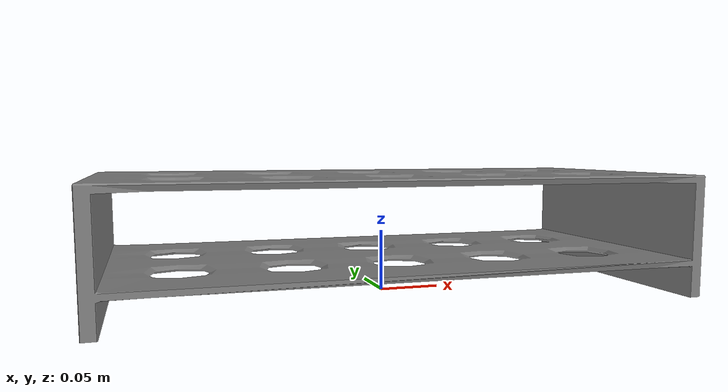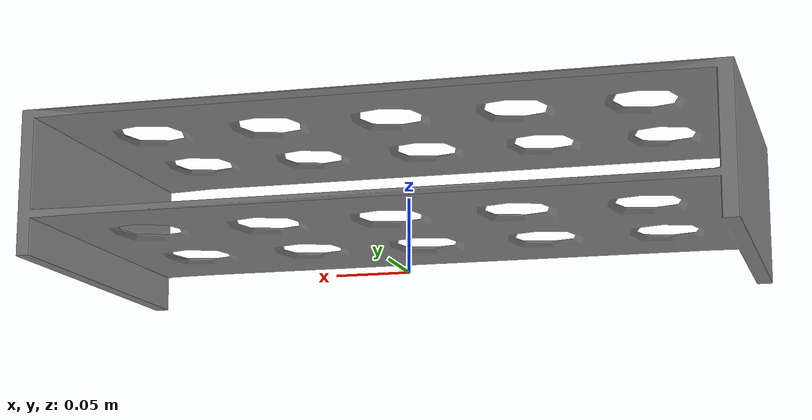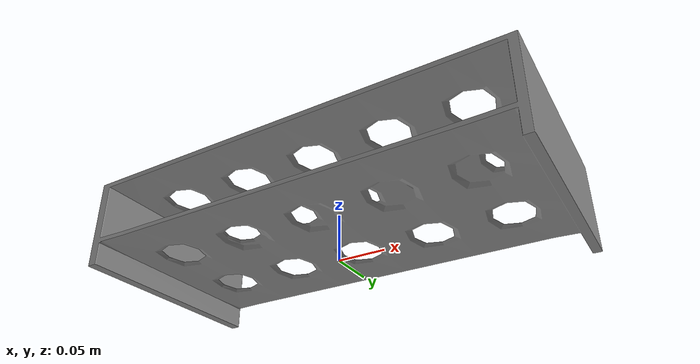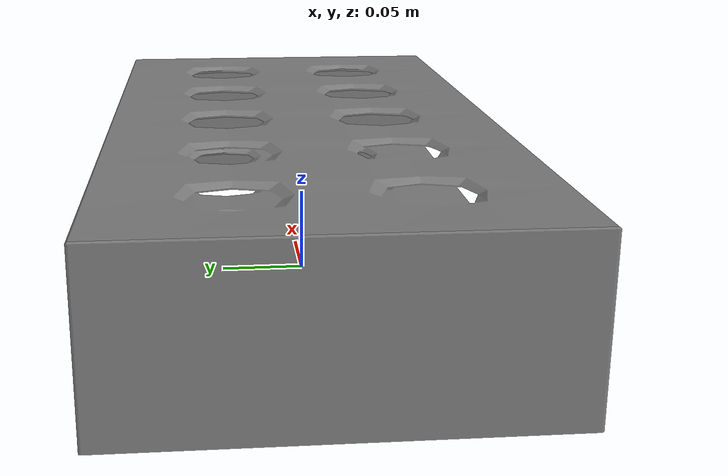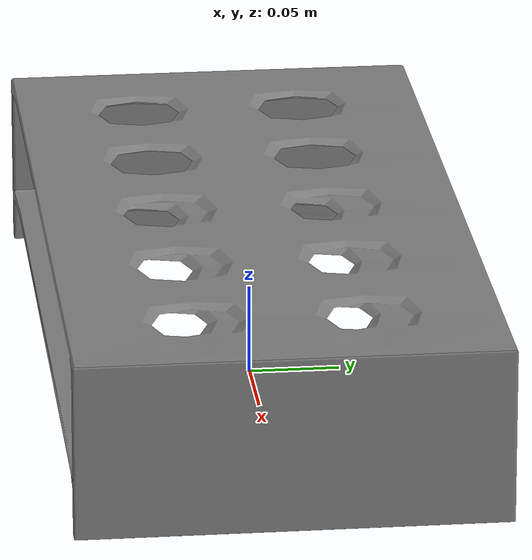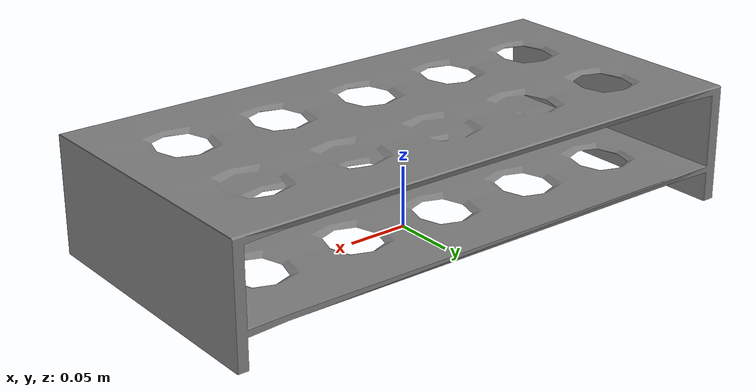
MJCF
<!-- @bbox dx=0.235 dy=0.460 dz=0.101 -->
<mujoco model="test_tube_stand">
   <compiler angle="radian"/>
   <default>
    <default class="visual">
      <geom group="1" type="mesh" contype="0" conaffinity="0"/>
    </default>
    <default class="collision">
      <geom group="3" solref="0.001 2"/>
    </default>
    <default class="keypoint">
      <site type="sphere" size="0.01" group="3" rgba="1 0 0 1"/>
    </default>
    <default class="grasppoint">
      <site type="sphere" size="0.01" group="4" rgba="0 0 1 0.2"/>
    </default>
    <default class="placepoint">
      <site type="sphere" size="0.01" group="2" rgba="0 0 1 0"/>
    </default>
  </default>
  <asset>
    <material name="material_0" specular="0.50196078" shininess="0.159999985" rgba="0.50196078 0.50196078 0.50196078 1.0"/>
    <mesh file="test_tube_stand.obj" scale="2 2 2"/>
    <mesh file="test_tube_stand_collision_0.obj" scale="2 2 2"/>
    <mesh file="test_tube_stand_collision_1.obj" scale="2 2 2"/>
    <mesh file="test_tube_stand_collision_2.obj" scale="2 2 2"/>
    <mesh file="test_tube_stand_collision_3.obj" scale="2 2 2"/>
    <mesh file="test_tube_stand_collision_4.obj" scale="2 2 2"/>
    <mesh file="test_tube_stand_collision_5.obj" scale="2 2 2"/>
    <mesh file="test_tube_stand_collision_6.obj" scale="2 2 2"/>
    <mesh file="test_tube_stand_collision_7.obj" scale="2 2 2"/>
    <mesh file="test_tube_stand_collision_8.obj" scale="2 2 2"/>
    <mesh file="test_tube_stand_collision_9.obj" scale="2 2 2"/>
    <mesh file="test_tube_stand_collision_10.obj" scale="2 2 2"/>
    <mesh file="test_tube_stand_collision_11.obj" scale="2 2 2"/>
    <mesh file="test_tube_stand_collision_12.obj" scale="2 2 2"/>
    <mesh file="test_tube_stand_collision_13.obj" scale="2 2 2"/>
    <mesh file="test_tube_stand_collision_14.obj" scale="2 2 2"/>
    <mesh file="test_tube_stand_collision_15.obj" scale="2 2 2"/>
    <mesh file="test_tube_stand_collision_16.obj" scale="2 2 2"/>
    <mesh file="test_tube_stand_collision_17.obj" scale="2 2 2"/>
    <mesh file="test_tube_stand_collision_18.obj" scale="2 2 2"/>
    <mesh file="test_tube_stand_collision_19.obj" scale="2 2 2"/>
    <mesh file="test_tube_stand_collision_20.obj" scale="2 2 2"/>
    <mesh file="test_tube_stand_collision_21.obj" scale="2 2 2"/>
    <mesh file="test_tube_stand_collision_22.obj" scale="2 2 2"/>
    <mesh file="test_tube_stand_collision_23.obj" scale="2 2 2"/>
    <mesh file="test_tube_stand_collision_24.obj" scale="2 2 2"/>
    <mesh file="test_tube_stand_collision_25.obj" scale="2 2 2"/>
    <mesh file="test_tube_stand_collision_26.obj" scale="2 2 2"/>
    <mesh file="test_tube_stand_collision_27.obj" scale="2 2 2"/>
    <mesh file="test_tube_stand_collision_28.obj" scale="2 2 2"/>
    <mesh file="test_tube_stand_collision_29.obj" scale="2 2 2"/>
    <mesh file="test_tube_stand_collision_30.obj" scale="2 2 2"/>
    <mesh file="test_tube_stand_collision_31.obj" scale="2 2 2"/>
    <mesh file="test_tube_stand_collision_32.obj" scale="2 2 2"/>
    <mesh file="test_tube_stand_collision_33.obj" scale="2 2 2"/>
    <mesh file="test_tube_stand_collision_34.obj" scale="2 2 2"/>
    <mesh file="test_tube_stand_collision_35.obj" scale="2 2 2"/>
    <mesh file="test_tube_stand_collision_36.obj" scale="2 2 2"/>
    <mesh file="test_tube_stand_collision_37.obj" scale="2 2 2"/>
    <mesh file="test_tube_stand_collision_38.obj" scale="2 2 2"/>
    <mesh file="test_tube_stand_collision_39.obj" scale="2 2 2"/>
    <mesh file="test_tube_stand_collision_40.obj" scale="2 2 2"/>
    <mesh file="test_tube_stand_collision_41.obj" scale="2 2 2"/>
    <mesh file="test_tube_stand_collision_42.obj" scale="2 2 2"/>
  </asset>
  <worldbody>
    <body name="test_tube_stand" euler="0 0 1.57">
      <geom material="material_0" type="mesh" mesh="test_tube_stand" class="visual"/>
      <geom type="box" pos="0 0 0.0285" size="0.02 0.22 0.002" rgba="1 1 1 1" class="collision"/>
      <geom type="box" pos="0.093 0 0.0285" size="0.02 0.22 0.002" rgba="1 1 1 1" class="collision"/>
      <geom type="box" pos="-0.093 0 0.0285" size="0.02 0.22 0.002" rgba="1 1 1 1" class="collision"/>
      <geom type="box" pos="0 0 0.096" size="0.02 0.22 0.002" rgba="1 1 1 1" class="collision"/>
      <geom type="box" pos="0.093 0 0.096" size="0.02 0.22 0.002" rgba="1 1 1 1" class="collision"/>
      <geom type="box" pos="-0.093 0 0.096" size="0.02 0.22 0.002" rgba="1 1 1 1" class="collision"/>

      <geom type="box" pos="0 0.04 0.096" size="0.08 0.019 0.002" rgba="1 1 1 1" class="collision"/>
      <geom type="box" pos="0 0.125 0.096" size="0.08 0.019 0.002" rgba="1 1 1 1" class="collision"/>
      <geom type="box" pos="0 0.205 0.096" size="0.08 0.019 0.002" rgba="1 1 1 1" class="collision"/>
      <geom type="box" pos="0 -0.04 0.096" size="0.08 0.019 0.002" rgba="1 1 1 1" class="collision"/>
      <geom type="box" pos="0 -0.125 0.096" size="0.08 0.019 0.002" rgba="1 1 1 1" class="collision"/>
      <geom type="box" pos="0 -0.205 0.096" size="0.08 0.019 0.002" rgba="1 1 1 1" class="collision"/>

      <geom type="box" pos="0 0.04 0.0285" size="0.08 0.019 0.002" rgba="1 1 1 1" class="collision"/>
      <geom type="box" pos="0 0.125 0.0285" size="0.08 0.019 0.002" rgba="1 1 1 1" class="collision"/>
      <geom type="box" pos="0 0.205 0.0285" size="0.08 0.019 0.002" rgba="1 1 1 1" class="collision"/>
      <geom type="box" pos="0 -0.04 0.0285" size="0.08 0.019 0.002" rgba="1 1 1 1" class="collision"/>
      <geom type="box" pos="0 -0.125 0.0285" size="0.08 0.019 0.002" rgba="1 1 1 1" class="collision"/>
      <geom type="box" pos="0 -0.205 0.0285" size="0.08 0.019 0.002" rgba="1 1 1 1" class="collision"/>

      <geom type="box" pos="0 0.22 0.048" size="0.12 0.002 0.048" rgba="1 1 1 1" class="collision"/>
      <geom type="box" pos="0 -0.22 0.048" size="0.12 0.002 0.048" rgba="1 1 1 1" class="collision"/>

    </body>
    <site class="keypoint" pos="-0.2 -0.1  -0.01"/>
    <site class="keypoint" pos="0.2 0.1 0.12"/>
    <!-- 5x2 placepoint grid: col_pos=[-0.16, -0.08, 0, 0.08, 0.16], row_pos=[-0.05, 0.05] -->
    <site class="placepoint" pos="-0.16 -0.05 0.18"/>
    <site class="placepoint" pos="-0.08 -0.05 0.18"/>
    <site class="placepoint" pos="0.0  -0.05 0.18"/>
    <site class="placepoint" pos="0.08 -0.05 0.18"/>
    <site class="placepoint" pos="0.16 -0.05 0.18"/>
    <site class="placepoint" pos="-0.16  0.05 0.18"/>
    <site class="placepoint" pos="-0.08  0.05 0.18"/>
    <site class="placepoint" pos="0.0   0.05 0.18"/>
    <site class="placepoint" pos="0.08  0.05 0.18"/>
    <site class="placepoint" pos="0.16  0.05 0.18"/>
  </worldbody>
</mujoco>
